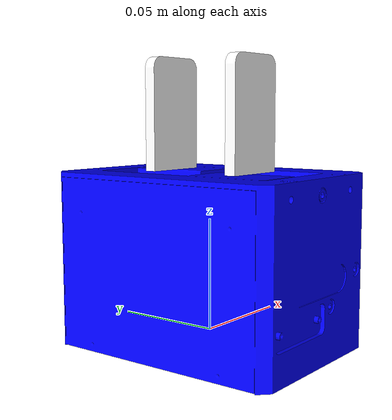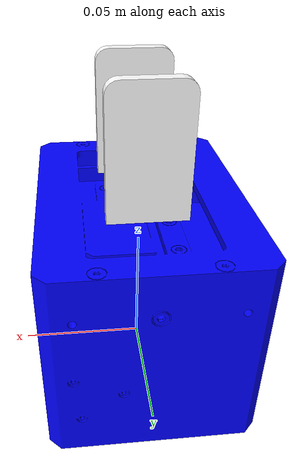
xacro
<robot xmlns:xacro="http://ros.org/wiki/xacro">
     <link name="finger_left_link">
        <visual>
            <geometry>
            <mesh filename="package://automatica2014_description/meshes/Schunk/finger_left_schunk.stl"/>
            </geometry>
            <material name="silver">
                            <color rgba="1 1 1 1"/>
            </material>
        </visual>
        <collision>
            <geometry>
                <mesh filename="package://automatica2014_description/meshes/Schunk/finger_left_schunk.stl"/>
            </geometry>
            <material name="silver">
                <color rgba="1 1 1 1"/>
            </material>
        </collision>
    </link>

    <link name="finger_right_link">
        <visual>
            <geometry>
            <mesh filename="package://automatica2014_description/meshes/Schunk/finger_right_schunk.stl"/>
            </geometry>
            <material name="silver">
                <color rgba="1 1 1 1"/>
            </material>
        </visual>
        <collision>
            <geometry>
                <mesh filename="package://automatica2014_description/meshes/Schunk/finger_right_schunk.stl"/>
            </geometry>
            <material name="silver">
                <color rgba="1 1 1 1"/>
            </material>
        </collision>
    </link>

    <link name="gripper_link">
        <visual>
            <geometry>
            <mesh filename="package://automatica2014_description/meshes/Schunk/gripper_schunk.stl" scale="0.001 0.001 0.001"/>
            </geometry>
            <material name="blue">
                <color rgba="0 0 1 1"/>
            </material>
        </visual>
        <collision>
            <geometry>
                <mesh filename="package://automatica2014_description/meshes/Schunk/gripper_schunk.stl" scale="0.001 0.001 0.001"/>
            </geometry>
            <material name="blue">
                <color rgba="0 0 1 1"/>
            </material>
        </collision>
    </link>

    <joint name="finger_left_joint" type="prismatic" >
        <parent link="gripper_link" />
        <child link="finger_left_link" />
        <limit effort="100" lower="0.001" upper="0.031" velocity="2.0"/>
        <calibration rising="0.0"/>
        <origin xyz="0.0 -0.008 0.096" rpy="-1.57 -1.57 3.14"/>
        <axis xyz="0 0 1" />
    </joint>

    <joint name="finger_right_joint" type="prismatic" >
            <parent link="gripper_link" />
            <child link="finger_right_link" />
            <limit effort="100" lower="0.001" upper="0.031" velocity="2.0"/>
            <calibration rising="0.0"/>
            <origin xyz="0.0 0.008 0.096" rpy="-1.57 -1.57 0"/>
            <axis xyz="0 0 1" />
    </joint>

</robot>
